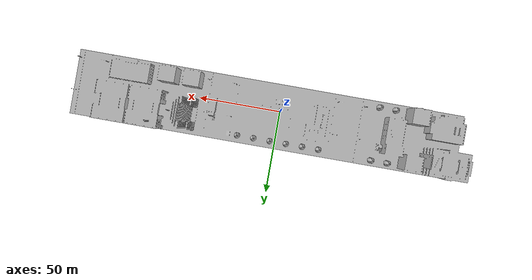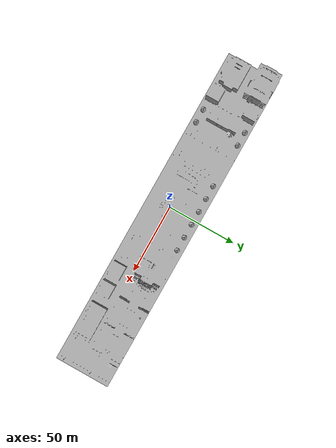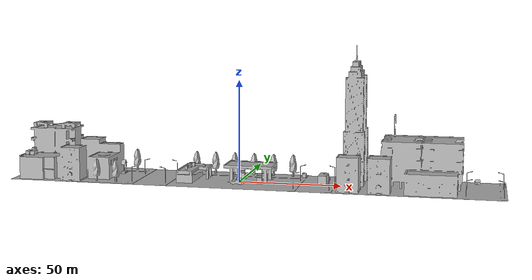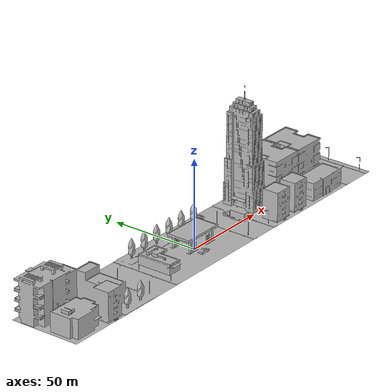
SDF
<?xml version="1.0"?>
<sdf version="1.4">
    <model name="sector">
    	<static>true</static>
      <link name="sector">
        <visual name="visual">
          <geometry>
            <mesh><uri>model://sector/meshes/sector.obj</uri></mesh>
          </geometry>
        </visual>
        <collision name="collision">
          <geometry>
            <mesh><uri>model://sector/meshes/sector.obj</uri></mesh>
          </geometry>
        </collision>
      </link>
    </model>
</sdf>
